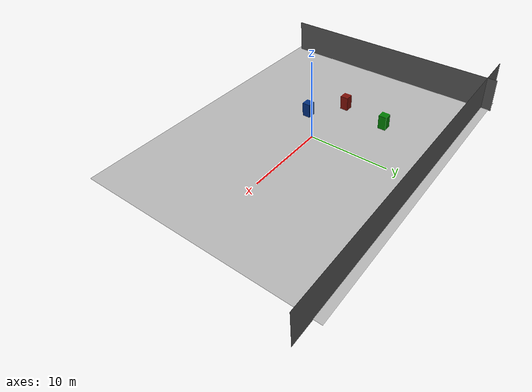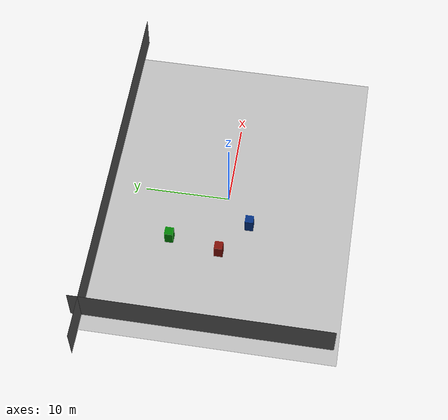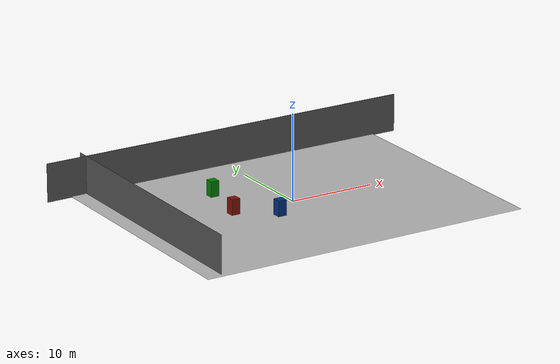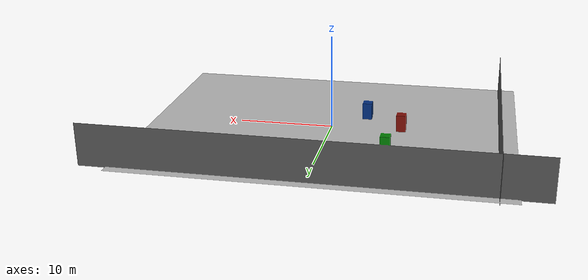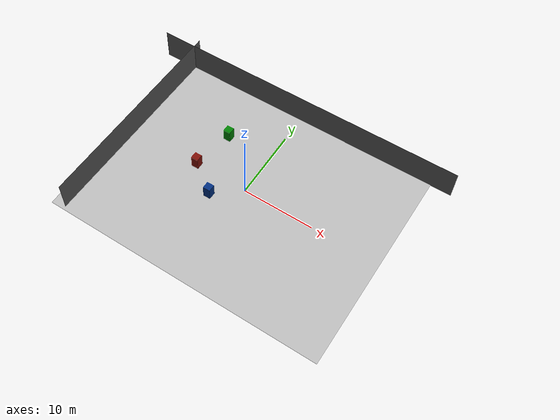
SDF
<?xml version="1.0" encoding="UTF-8" ?>
<sdf version="1.4">
  <world name="default">
    <scene>
      <ambient>0.5 0.5 0.5 1</ambient>
      <background>0.5 0.5 0.5 1</background>
      <shadows>false</shadows>
    </scene>
    <physics type="ode">
      <gravity>0 0 -9.81</gravity>
      <ode>
        <solver>
          <type>quick</type>
          <iters>10</iters>
          <sor>1.3</sor>
        </solver>
        <constraints>
          <cfm>0.0</cfm>
          <erp>0.2</erp>
          <contact_max_correcting_vel>10</contact_max_correcting_vel>
          <contact_surface_layer>0.001</contact_surface_layer>
        </constraints>
      </ode>
      <real_time_update_rate>1000</real_time_update_rate>
      <max_step_size>0.001</max_step_size>
    </physics>
    <light type="directional" name="directional_light_1">
      <pose>0 0 20 0 0 0</pose>
      <diffuse>1 1 1 1</diffuse>
      <specular>1 1 1 1</specular>
      <attenuation>
        <range>300</range>
      </attenuation>
      <direction>1 1 -1</direction>
      <cast_shadows>false</cast_shadows>
    </light>
    <light type="directional" name="directional_light_2">
      <pose>0 0 20 0 0 0</pose>
      <diffuse>1 1 1 1</diffuse>
      <specular>1 1 1 1</specular>
      <attenuation>
        <range>300</range>
      </attenuation>
      <direction>-1 1 -1</direction>
      <cast_shadows>false</cast_shadows>
    </light>
    <light type="directional" name="directional_light_3">
      <pose>0 0 20 0 0 0</pose>
      <diffuse>1 1 1 1</diffuse>
      <specular>1 1 1 1</specular>
      <attenuation>
        <range>300</range>
      </attenuation>
      <direction>-1 -1 -1</direction>
      <cast_shadows>false</cast_shadows>
    </light>
    <model name="3boxes_room">
      <link name="3boxes_room_link">
        <pose>0 0 0 0 0 0</pose>
        <collision name="3boxes_room_collision">
          <geometry>
            <mesh>
              <filename>3boxes_room.dae</filename>
              <scale>1 1 1</scale>
            </mesh>
          </geometry>
        </collision>
        <visual name="3boxes_room">
          <geometry>
            <mesh>
              <filename>3boxes_room.dae</filename>
              <scale>1 1 1</scale>
            </mesh>
          </geometry>
          <cast_shadows>false</cast_shadows>
        </visual>
      </link>
      <static>true</static>
    </model>
  </world>
</sdf>
